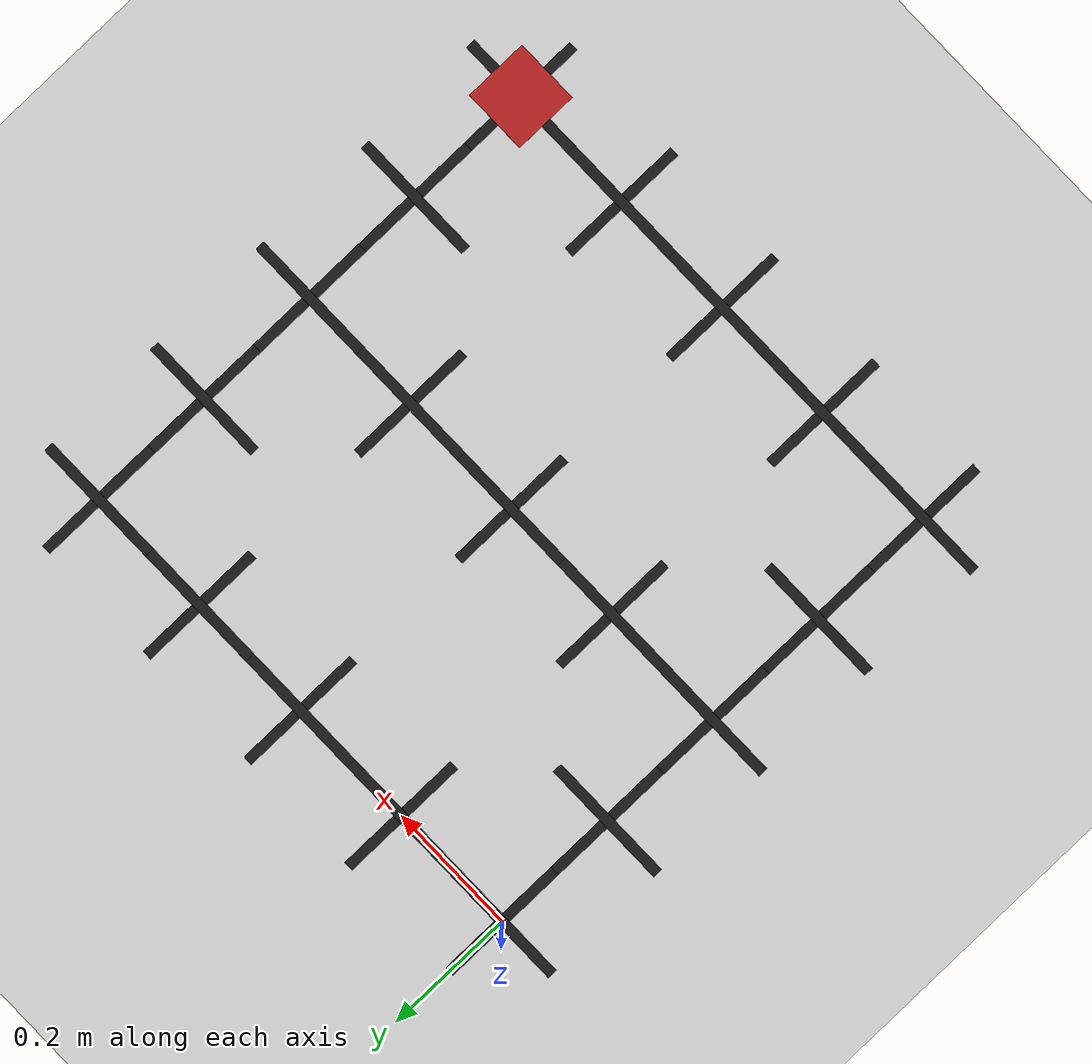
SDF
<?xml version="1.0" ?>
<sdf version="1.6">
  <world name="maze">
    <gui fullscreen="0">
      <camera name="user_camera">
        <pose>0.4000 -0.4000 1.9000 0 1.5707 1.5707</pose>
      </camera>
    </gui>

    <scene>
      <ambient>0.6 0.6 0.6 1</ambient>
      <background>0.7 0.7 0.8 1</background>
      <shadows>false</shadows>
    </scene>

    <light name="sun" type="directional">
      <cast_shadows>false</cast_shadows>
      <pose>0 0 10 0 0 0</pose>
      <diffuse>0.9 0.9 0.9 1</diffuse>
      <specular>0.2 0.2 0.2 1</specular>
      <direction>-0.3 0.4 -1</direction>
    </light>

    <model name="ground_plane">
      <static>true</static>
      <link name="link">
        <collision name="c">
          <geometry><plane><normal>0 0 1</normal><size>1.40 1.40</size></plane></geometry>
          <surface><friction><ode><mu>1.0</mu><mu2>1.0</mu2></ode></friction></surface>
        </collision>
        <visual name="v">
          <cast_shadows>false</cast_shadows>
          <geometry><plane><normal>0 0 1</normal><size>1.40 1.40</size></plane></geometry>
          <material>
            <ambient>1 1 1 1</ambient>
            <diffuse>1 1 1 1</diffuse>
            <script>
              <uri>file://media/materials/scripts/gazebo.material</uri>
              <name>Gazebo/White</name>
            </script>
          </material>
        </visual>
      </link>
    </model>

    <model name="maze_lines">
      <static>true</static>
    <link name="line_0">
      <pose>0.0000 0.0000 0.0005 0 0 0.0000</pose>
      <visual name="v">
        <geometry><box><size>0.2000 0.0150 0.0010</size></box></geometry>
        <material>
          <ambient>0 0 0 1</ambient>
          <diffuse>0 0 0 1</diffuse>
          <script>
            <uri>file://media/materials/scripts/gazebo.material</uri>
            <name>Gazebo/Black</name>
          </script>
        </material>
      </visual>
    </link>
    <link name="line_1">
      <pose>0.0000 0.0000 0.0005 0 0 1.5708</pose>
      <visual name="v">
        <geometry><box><size>0.2000 0.0150 0.0010</size></box></geometry>
        <material>
          <ambient>0 0 0 1</ambient>
          <diffuse>0 0 0 1</diffuse>
          <script>
            <uri>file://media/materials/scripts/gazebo.material</uri>
            <name>Gazebo/Black</name>
          </script>
        </material>
      </visual>
    </link>
    <link name="line_2">
      <pose>0.2000 0.0000 0.0005 0 0 0.0000</pose>
      <visual name="v">
        <geometry><box><size>0.2000 0.0150 0.0010</size></box></geometry>
        <material>
          <ambient>0 0 0 1</ambient>
          <diffuse>0 0 0 1</diffuse>
          <script>
            <uri>file://media/materials/scripts/gazebo.material</uri>
            <name>Gazebo/Black</name>
          </script>
        </material>
      </visual>
    </link>
    <link name="line_3">
      <pose>0.2000 0.0000 0.0005 0 0 1.5708</pose>
      <visual name="v">
        <geometry><box><size>0.2000 0.0150 0.0010</size></box></geometry>
        <material>
          <ambient>0 0 0 1</ambient>
          <diffuse>0 0 0 1</diffuse>
          <script>
            <uri>file://media/materials/scripts/gazebo.material</uri>
            <name>Gazebo/Black</name>
          </script>
        </material>
      </visual>
    </link>
    <link name="line_4">
      <pose>0.4000 0.0000 0.0005 0 0 0.0000</pose>
      <visual name="v">
        <geometry><box><size>0.2000 0.0150 0.0010</size></box></geometry>
        <material>
          <ambient>0 0 0 1</ambient>
          <diffuse>0 0 0 1</diffuse>
          <script>
            <uri>file://media/materials/scripts/gazebo.material</uri>
            <name>Gazebo/Black</name>
          </script>
        </material>
      </visual>
    </link>
    <link name="line_5">
      <pose>0.4000 0.0000 0.0005 0 0 1.5708</pose>
      <visual name="v">
        <geometry><box><size>0.2000 0.0150 0.0010</size></box></geometry>
        <material>
          <ambient>0 0 0 1</ambient>
          <diffuse>0 0 0 1</diffuse>
          <script>
            <uri>file://media/materials/scripts/gazebo.material</uri>
            <name>Gazebo/Black</name>
          </script>
        </material>
      </visual>
    </link>
    <link name="line_6">
      <pose>0.6000 0.0000 0.0005 0 0 0.0000</pose>
      <visual name="v">
        <geometry><box><size>0.2000 0.0150 0.0010</size></box></geometry>
        <material>
          <ambient>0 0 0 1</ambient>
          <diffuse>0 0 0 1</diffuse>
          <script>
            <uri>file://media/materials/scripts/gazebo.material</uri>
            <name>Gazebo/Black</name>
          </script>
        </material>
      </visual>
    </link>
    <link name="line_7">
      <pose>0.6000 0.0000 0.0005 0 0 1.5708</pose>
      <visual name="v">
        <geometry><box><size>0.2000 0.0150 0.0010</size></box></geometry>
        <material>
          <ambient>0 0 0 1</ambient>
          <diffuse>0 0 0 1</diffuse>
          <script>
            <uri>file://media/materials/scripts/gazebo.material</uri>
            <name>Gazebo/Black</name>
          </script>
        </material>
      </visual>
    </link>
    <link name="line_8">
      <pose>0.8000 0.0000 0.0005 0 0 0.0000</pose>
      <visual name="v">
        <geometry><box><size>0.2000 0.0150 0.0010</size></box></geometry>
        <material>
          <ambient>0 0 0 1</ambient>
          <diffuse>0 0 0 1</diffuse>
          <script>
            <uri>file://media/materials/scripts/gazebo.material</uri>
            <name>Gazebo/Black</name>
          </script>
        </material>
      </visual>
    </link>
    <link name="line_9">
      <pose>0.8000 0.0000 0.0005 0 0 1.5708</pose>
      <visual name="v">
        <geometry><box><size>0.2000 0.0150 0.0010</size></box></geometry>
        <material>
          <ambient>0 0 0 1</ambient>
          <diffuse>0 0 0 1</diffuse>
          <script>
            <uri>file://media/materials/scripts/gazebo.material</uri>
            <name>Gazebo/Black</name>
          </script>
        </material>
      </visual>
    </link>
    <link name="line_10">
      <pose>0.0000 -0.2000 0.0005 0 0 0.0000</pose>
      <visual name="v">
        <geometry><box><size>0.2000 0.0150 0.0010</size></box></geometry>
        <material>
          <ambient>0 0 0 1</ambient>
          <diffuse>0 0 0 1</diffuse>
          <script>
            <uri>file://media/materials/scripts/gazebo.material</uri>
            <name>Gazebo/Black</name>
          </script>
        </material>
      </visual>
    </link>
    <link name="line_11">
      <pose>0.0000 -0.2000 0.0005 0 0 1.5708</pose>
      <visual name="v">
        <geometry><box><size>0.2000 0.0150 0.0010</size></box></geometry>
        <material>
          <ambient>0 0 0 1</ambient>
          <diffuse>0 0 0 1</diffuse>
          <script>
            <uri>file://media/materials/scripts/gazebo.material</uri>
            <name>Gazebo/Black</name>
          </script>
        </material>
      </visual>
    </link>
    <link name="line_12">
      <pose>0.8000 -0.2000 0.0005 0 0 0.0000</pose>
      <visual name="v">
        <geometry><box><size>0.2000 0.0150 0.0010</size></box></geometry>
        <material>
          <ambient>0 0 0 1</ambient>
          <diffuse>0 0 0 1</diffuse>
          <script>
            <uri>file://media/materials/scripts/gazebo.material</uri>
            <name>Gazebo/Black</name>
          </script>
        </material>
      </visual>
    </link>
    <link name="line_13">
      <pose>0.8000 -0.2000 0.0005 0 0 1.5708</pose>
      <visual name="v">
        <geometry><box><size>0.2000 0.0150 0.0010</size></box></geometry>
        <material>
          <ambient>0 0 0 1</ambient>
          <diffuse>0 0 0 1</diffuse>
          <script>
            <uri>file://media/materials/scripts/gazebo.material</uri>
            <name>Gazebo/Black</name>
          </script>
        </material>
      </visual>
    </link>
    <link name="line_14">
      <pose>0.0000 -0.4000 0.0005 0 0 0.0000</pose>
      <visual name="v">
        <geometry><box><size>0.2000 0.0150 0.0010</size></box></geometry>
        <material>
          <ambient>0 0 0 1</ambient>
          <diffuse>0 0 0 1</diffuse>
          <script>
            <uri>file://media/materials/scripts/gazebo.material</uri>
            <name>Gazebo/Black</name>
          </script>
        </material>
      </visual>
    </link>
    <link name="line_15">
      <pose>0.0000 -0.4000 0.0005 0 0 1.5708</pose>
      <visual name="v">
        <geometry><box><size>0.2000 0.0150 0.0010</size></box></geometry>
        <material>
          <ambient>0 0 0 1</ambient>
          <diffuse>0 0 0 1</diffuse>
          <script>
            <uri>file://media/materials/scripts/gazebo.material</uri>
            <name>Gazebo/Black</name>
          </script>
        </material>
      </visual>
    </link>
    <link name="line_16">
      <pose>0.2000 -0.4000 0.0005 0 0 0.0000</pose>
      <visual name="v">
        <geometry><box><size>0.2000 0.0150 0.0010</size></box></geometry>
        <material>
          <ambient>0 0 0 1</ambient>
          <diffuse>0 0 0 1</diffuse>
          <script>
            <uri>file://media/materials/scripts/gazebo.material</uri>
            <name>Gazebo/Black</name>
          </script>
        </material>
      </visual>
    </link>
    <link name="line_17">
      <pose>0.2000 -0.4000 0.0005 0 0 1.5708</pose>
      <visual name="v">
        <geometry><box><size>0.2000 0.0150 0.0010</size></box></geometry>
        <material>
          <ambient>0 0 0 1</ambient>
          <diffuse>0 0 0 1</diffuse>
          <script>
            <uri>file://media/materials/scripts/gazebo.material</uri>
            <name>Gazebo/Black</name>
          </script>
        </material>
      </visual>
    </link>
    <link name="line_18">
      <pose>0.4000 -0.4000 0.0005 0 0 0.0000</pose>
      <visual name="v">
        <geometry><box><size>0.2000 0.0150 0.0010</size></box></geometry>
        <material>
          <ambient>0 0 0 1</ambient>
          <diffuse>0 0 0 1</diffuse>
          <script>
            <uri>file://media/materials/scripts/gazebo.material</uri>
            <name>Gazebo/Black</name>
          </script>
        </material>
      </visual>
    </link>
    <link name="line_19">
      <pose>0.4000 -0.4000 0.0005 0 0 1.5708</pose>
      <visual name="v">
        <geometry><box><size>0.2000 0.0150 0.0010</size></box></geometry>
        <material>
          <ambient>0 0 0 1</ambient>
          <diffuse>0 0 0 1</diffuse>
          <script>
            <uri>file://media/materials/scripts/gazebo.material</uri>
            <name>Gazebo/Black</name>
          </script>
        </material>
      </visual>
    </link>
    <link name="line_20">
      <pose>0.6000 -0.4000 0.0005 0 0 0.0000</pose>
      <visual name="v">
        <geometry><box><size>0.2000 0.0150 0.0010</size></box></geometry>
        <material>
          <ambient>0 0 0 1</ambient>
          <diffuse>0 0 0 1</diffuse>
          <script>
            <uri>file://media/materials/scripts/gazebo.material</uri>
            <name>Gazebo/Black</name>
          </script>
        </material>
      </visual>
    </link>
    <link name="line_21">
      <pose>0.6000 -0.4000 0.0005 0 0 1.5708</pose>
      <visual name="v">
        <geometry><box><size>0.2000 0.0150 0.0010</size></box></geometry>
        <material>
          <ambient>0 0 0 1</ambient>
          <diffuse>0 0 0 1</diffuse>
          <script>
            <uri>file://media/materials/scripts/gazebo.material</uri>
            <name>Gazebo/Black</name>
          </script>
        </material>
      </visual>
    </link>
    <link name="line_22">
      <pose>0.8000 -0.4000 0.0005 0 0 0.0000</pose>
      <visual name="v">
        <geometry><box><size>0.2000 0.0150 0.0010</size></box></geometry>
        <material>
          <ambient>0 0 0 1</ambient>
          <diffuse>0 0 0 1</diffuse>
          <script>
            <uri>file://media/materials/scripts/gazebo.material</uri>
            <name>Gazebo/Black</name>
          </script>
        </material>
      </visual>
    </link>
    <link name="line_23">
      <pose>0.8000 -0.4000 0.0005 0 0 1.5708</pose>
      <visual name="v">
        <geometry><box><size>0.2000 0.0150 0.0010</size></box></geometry>
        <material>
          <ambient>0 0 0 1</ambient>
          <diffuse>0 0 0 1</diffuse>
          <script>
            <uri>file://media/materials/scripts/gazebo.material</uri>
            <name>Gazebo/Black</name>
          </script>
        </material>
      </visual>
    </link>
    <link name="line_24">
      <pose>0.0000 -0.6000 0.0005 0 0 0.0000</pose>
      <visual name="v">
        <geometry><box><size>0.2000 0.0150 0.0010</size></box></geometry>
        <material>
          <ambient>0 0 0 1</ambient>
          <diffuse>0 0 0 1</diffuse>
          <script>
            <uri>file://media/materials/scripts/gazebo.material</uri>
            <name>Gazebo/Black</name>
          </script>
        </material>
      </visual>
    </link>
    <link name="line_25">
      <pose>0.0000 -0.6000 0.0005 0 0 1.5708</pose>
      <visual name="v">
        <geometry><box><size>0.2000 0.0150 0.0010</size></box></geometry>
        <material>
          <ambient>0 0 0 1</ambient>
          <diffuse>0 0 0 1</diffuse>
          <script>
            <uri>file://media/materials/scripts/gazebo.material</uri>
            <name>Gazebo/Black</name>
          </script>
        </material>
      </visual>
    </link>
    <link name="line_26">
      <pose>0.8000 -0.6000 0.0005 0 0 0.0000</pose>
      <visual name="v">
        <geometry><box><size>0.2000 0.0150 0.0010</size></box></geometry>
        <material>
          <ambient>0 0 0 1</ambient>
          <diffuse>0 0 0 1</diffuse>
          <script>
            <uri>file://media/materials/scripts/gazebo.material</uri>
            <name>Gazebo/Black</name>
          </script>
        </material>
      </visual>
    </link>
    <link name="line_27">
      <pose>0.8000 -0.6000 0.0005 0 0 1.5708</pose>
      <visual name="v">
        <geometry><box><size>0.2000 0.0150 0.0010</size></box></geometry>
        <material>
          <ambient>0 0 0 1</ambient>
          <diffuse>0 0 0 1</diffuse>
          <script>
            <uri>file://media/materials/scripts/gazebo.material</uri>
            <name>Gazebo/Black</name>
          </script>
        </material>
      </visual>
    </link>
    <link name="line_28">
      <pose>0.0000 -0.8000 0.0005 0 0 0.0000</pose>
      <visual name="v">
        <geometry><box><size>0.2000 0.0150 0.0010</size></box></geometry>
        <material>
          <ambient>0 0 0 1</ambient>
          <diffuse>0 0 0 1</diffuse>
          <script>
            <uri>file://media/materials/scripts/gazebo.material</uri>
            <name>Gazebo/Black</name>
          </script>
        </material>
      </visual>
    </link>
    <link name="line_29">
      <pose>0.0000 -0.8000 0.0005 0 0 1.5708</pose>
      <visual name="v">
        <geometry><box><size>0.2000 0.0150 0.0010</size></box></geometry>
        <material>
          <ambient>0 0 0 1</ambient>
          <diffuse>0 0 0 1</diffuse>
          <script>
            <uri>file://media/materials/scripts/gazebo.material</uri>
            <name>Gazebo/Black</name>
          </script>
        </material>
      </visual>
    </link>
    <link name="line_30">
      <pose>0.2000 -0.8000 0.0005 0 0 0.0000</pose>
      <visual name="v">
        <geometry><box><size>0.2000 0.0150 0.0010</size></box></geometry>
        <material>
          <ambient>0 0 0 1</ambient>
          <diffuse>0 0 0 1</diffuse>
          <script>
            <uri>file://media/materials/scripts/gazebo.material</uri>
            <name>Gazebo/Black</name>
          </script>
        </material>
      </visual>
    </link>
    <link name="line_31">
      <pose>0.2000 -0.8000 0.0005 0 0 1.5708</pose>
      <visual name="v">
        <geometry><box><size>0.2000 0.0150 0.0010</size></box></geometry>
        <material>
          <ambient>0 0 0 1</ambient>
          <diffuse>0 0 0 1</diffuse>
          <script>
            <uri>file://media/materials/scripts/gazebo.material</uri>
            <name>Gazebo/Black</name>
          </script>
        </material>
      </visual>
    </link>
    <link name="line_32">
      <pose>0.4000 -0.8000 0.0005 0 0 0.0000</pose>
      <visual name="v">
        <geometry><box><size>0.2000 0.0150 0.0010</size></box></geometry>
        <material>
          <ambient>0 0 0 1</ambient>
          <diffuse>0 0 0 1</diffuse>
          <script>
            <uri>file://media/materials/scripts/gazebo.material</uri>
            <name>Gazebo/Black</name>
          </script>
        </material>
      </visual>
    </link>
    <link name="line_33">
      <pose>0.4000 -0.8000 0.0005 0 0 1.5708</pose>
      <visual name="v">
        <geometry><box><size>0.2000 0.0150 0.0010</size></box></geometry>
        <material>
          <ambient>0 0 0 1</ambient>
          <diffuse>0 0 0 1</diffuse>
          <script>
            <uri>file://media/materials/scripts/gazebo.material</uri>
            <name>Gazebo/Black</name>
          </script>
        </material>
      </visual>
    </link>
    <link name="line_34">
      <pose>0.6000 -0.8000 0.0005 0 0 0.0000</pose>
      <visual name="v">
        <geometry><box><size>0.2000 0.0150 0.0010</size></box></geometry>
        <material>
          <ambient>0 0 0 1</ambient>
          <diffuse>0 0 0 1</diffuse>
          <script>
            <uri>file://media/materials/scripts/gazebo.material</uri>
            <name>Gazebo/Black</name>
          </script>
        </material>
      </visual>
    </link>
    <link name="line_35">
      <pose>0.6000 -0.8000 0.0005 0 0 1.5708</pose>
      <visual name="v">
        <geometry><box><size>0.2000 0.0150 0.0010</size></box></geometry>
        <material>
          <ambient>0 0 0 1</ambient>
          <diffuse>0 0 0 1</diffuse>
          <script>
            <uri>file://media/materials/scripts/gazebo.material</uri>
            <name>Gazebo/Black</name>
          </script>
        </material>
      </visual>
    </link>
    <link name="line_36">
      <pose>0.8000 -0.8000 0.0005 0 0 0.0000</pose>
      <visual name="v">
        <geometry><box><size>0.2000 0.0150 0.0010</size></box></geometry>
        <material>
          <ambient>0 0 0 1</ambient>
          <diffuse>0 0 0 1</diffuse>
          <script>
            <uri>file://media/materials/scripts/gazebo.material</uri>
            <name>Gazebo/Black</name>
          </script>
        </material>
      </visual>
    </link>
    <link name="line_37">
      <pose>0.8000 -0.8000 0.0005 0 0 1.5708</pose>
      <visual name="v">
        <geometry><box><size>0.2000 0.0150 0.0010</size></box></geometry>
        <material>
          <ambient>0 0 0 1</ambient>
          <diffuse>0 0 0 1</diffuse>
          <script>
            <uri>file://media/materials/scripts/gazebo.material</uri>
            <name>Gazebo/Black</name>
          </script>
        </material>
      </visual>
    </link>
    <link name="goal_marker">
      <pose>0.8000 -0.8000 0.0010 0 0 0</pose>
      <visual name="v">
        <geometry><box><size>0.1000 0.1000 0.0010</size></box></geometry>
        <material>
          <ambient>0.8 0.1 0.1 1</ambient>
          <diffuse>0.8 0.1 0.1 1</diffuse>
          <script>
            <uri>file://media/materials/scripts/gazebo.material</uri>
            <name>Gazebo/Red</name>
          </script>
      </material>
      </visual>
    </link>
    </model>

    <physics type="ode">
      <real_time_update_rate>1000</real_time_update_rate>
      <max_step_size>0.001</max_step_size>
    </physics>
  </world>
</sdf>
